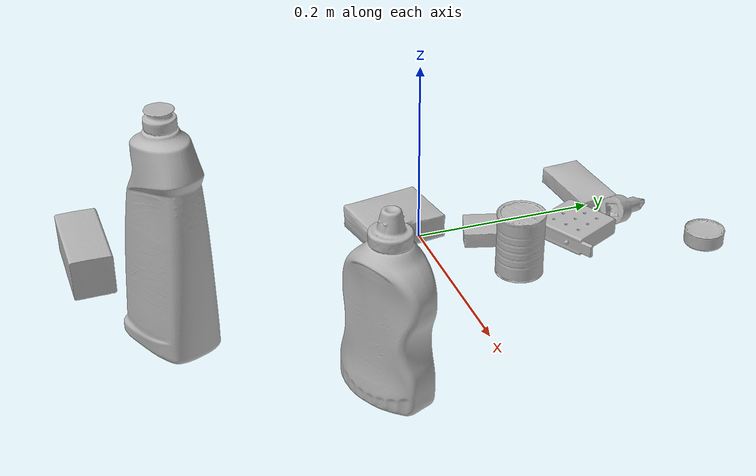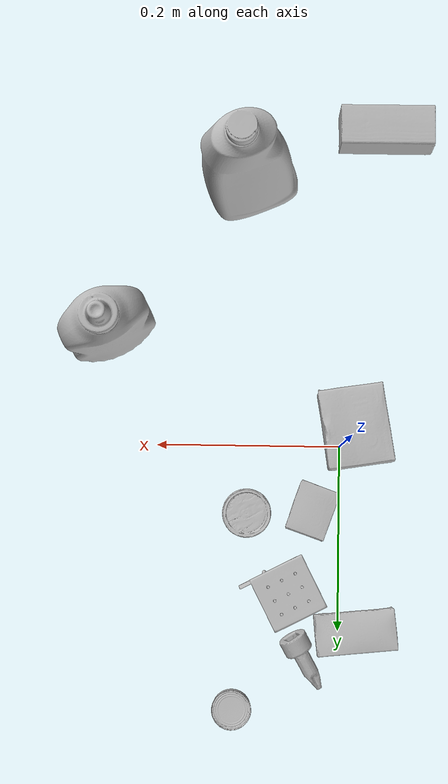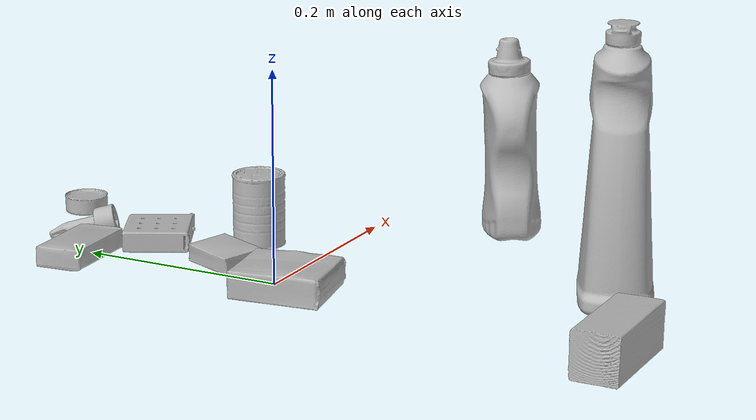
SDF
<sdf version="1.4">
  <world name="default">
    <light name="light1" type="point">
      <pose>0 0 1 0 0 0</pose>
      <diffuse>3 3 3 1</diffuse>
      <specular>3 3 3 1</specular>
    </light>
    <light name="light2" type="point">
      <pose>0 0.5 2 0 0 0</pose>
      <diffuse>1 1 1 1</diffuse>
      <specular>1 1 1 1</specular>
    </light>
    <light name="light3" type="point">
      <pose>0 0.5 2 0 0 0</pose>
      <diffuse>3 3 3 1</diffuse>
      <specular>3 3 3 1</specular>
    </light>
    <scene>
      <ambient>0.7 0.7 0.7</ambient>
    </scene>
    <model name="bottle1">
      <link name="link_bottle1">
        <collision name="default">
          <geometry>
            <mesh>
              <uri>model://mustard_bottle/collision_meshes/collision.obj</uri>
              <scale>1.0 1.0 1.0</scale>
            </mesh>
          </geometry>
          <surface>
            <friction>
              <ode>
                <mu>0.5</mu>
                <mu2>0.5</mu2>
              </ode>
            </friction>
          <contact>
        <ode>
            <max_vel>0</max_vel>
            <min_depth>0.0001</min_depth>
            <kp>1e8</kp>
        </ode>
    </contact></surface>
        </collision>
        <visual name="default">
          <geometry>
            <mesh>
              <uri>model://mustard_bottle/visual_meshes/visual.dae</uri>
              <scale>1.0 1.0 1.0</scale>
            </mesh>
          </geometry>
        </visual>
        <inertial>
          <mass>0.9814921021461487</mass>
          <pose>0.000503245391882956 -0.00015647400869056582 -0.0174757968634367 0.00041823298570721707 0.000946579165099878 0.024853733541460008</pose>
          <inertia>
            <ixx>0.0027254699</ixx>
            <iyy>0.0023913688</iyy>
            <izz>0.0007182988</izz>
            <ixy>0</ixy>
            <ixz>0</ixz>
            <iyz>0</iyz>
          </inertia>
        </inertial>
      </link>
      <pose>0.25037434697151184 -0.12205035239458084 0.09678112715482712 -0.0006034122238133107 0.03232418349580083 2.0096684747108147</pose>
    </model>
    <model name="bottle2">
      <link name="link_bottle2">
        <collision name="default">
          <geometry>
            <mesh>
              <uri>model://bleach_cleanser/collision_meshes/collision.obj</uri>
              <scale>1.0 1.0 1.0</scale>
            </mesh>
          </geometry>
          <surface>
            <friction>
              <ode>
                <mu>0.5</mu>
                <mu2>0.5</mu2>
              </ode>
            </friction>
          <contact>
        <ode>
            <max_vel>0</max_vel>
            <min_depth>0.0001</min_depth>
            <kp>1e8</kp>
        </ode>
    </contact></surface>
        </collision>
        <visual name="default">
          <geometry>
            <mesh>
              <uri>model://bleach_cleanser/visual_meshes/visual.dae</uri>
              <scale>1.0 1.0 1.0</scale>
            </mesh>
          </geometry>
        </visual>
        <inertial>
          <mass>0.5613878965377808</mass>
          <pose>0.00012193182919872925 0.0037838828284293413 -0.02442161738872528 -0.07381670616369514 0.00042011545192634117 -0.006875071107578698</pose>
          <inertia>
            <ixx>0.0027323565</ixx>
            <iyy>0.002546156</iyy>
            <izz>0.0004671619</izz>
            <ixy>0</ixy>
            <ixz>0</ixz>
            <iyz>0</iyz>
          </inertia>
        </inertial>
      </link>
      <pose>0.10096479952335358 -0.2902838885784149 0.12578420341014862 -0.00020523464929457578 1.037894427689835e-05 -1.1629088659280142</pose>
    </model>
    <model name="toy1">
      <link name="link_toy1">
        <collision name="default">
          <geometry>
            <mesh>
              <uri>model://nine_hole_peg_test/collision_meshes/collision.obj</uri>
              <scale>0.5 0.5 0.5</scale>
            </mesh>
          </geometry>
          <surface>
            <friction>
              <ode>
                <mu>0.5</mu>
                <mu2>0.5</mu2>
              </ode>
            </friction>
          <contact>
        <ode>
            <max_vel>0</max_vel>
            <min_depth>0.0001</min_depth>
            <kp>1e8</kp>
        </ode>
    </contact></surface>
        </collision>
        <visual name="default">
          <geometry>
            <mesh>
              <uri>model://nine_hole_peg_test/visual_meshes/visual.dae</uri>
              <scale>0.5 0.5 0.5</scale>
            </mesh>
          </geometry>
        </visual>
        <inertial>
          <mass>0.10001979023218155</mass>
          <pose>-0.002308693015947938 -0.0048238071613013744 1.323034393863054e-05 -0.001466679064329537 0.000719417562538249 -0.6342417933325166</pose>
          <inertia>
            <ixx>3.9099352e-05</ixx>
            <iyy>3.650665e-05</iyy>
            <izz>6.851359e-05</izz>
            <ixy>0</ixy>
            <ixz>0</ixz>
            <iyz>0</iyz>
          </inertia>
        </inertial>
      </link>
      <pose>0.060291994363069534 0.15991495549678802 0.010385501198470592 9.182694601130137e-10 1.1911023527171519e-08 -1.0951113115029452</pose>
    </model>
    <model name="toy2">
      <link name="link_toy2">
        <collision name="default">
          <geometry>
            <mesh>
              <uri>model://d_toy_airplane/collision_meshes/collision.obj</uri>
              <scale>1.0 1.0 1.0</scale>
            </mesh>
          </geometry>
          <surface>
            <friction>
              <ode>
                <mu>0.5</mu>
                <mu2>0.5</mu2>
              </ode>
            </friction>
          <contact>
        <ode>
            <max_vel>0</max_vel>
            <min_depth>0.0001</min_depth>
            <kp>1e8</kp>
        </ode>
    </contact></surface>
        </collision>
        <visual name="default">
          <geometry>
            <mesh>
              <uri>model://d_toy_airplane/visual_meshes/visual.dae</uri>
              <scale>1.0 1.0 1.0</scale>
            </mesh>
          </geometry>
        </visual>
        <inertial>
          <mass>0.019254321232438087</mass>
          <pose>9.410314669366926e-05 -5.809308640891686e-05 -0.011728096753358841 0.0002669110283705203 0.00467899073598619 0.5194519611142697</pose>
          <inertia>
            <ixx>5.7720713e-06</ixx>
            <iyy>5.776424e-06</iyy>
            <izz>1.7426261e-06</izz>
            <ixy>0</ixy>
            <ixz>0</ixz>
            <iyz>0</iyz>
          </inertia>
        </inertial>
      </link>
      <pose>0.034861817955970764 0.233719602227211 0.011313841678202152 1.807819135346176 0.14095376579194768 -2.608033680563734</pose>
    </model>
    <model name="can1">
      <link name="link_can1">
        <collision name="default">
          <geometry>
            <mesh>
              <uri>model://master_chef_can/collision_meshes/collision.obj</uri>
              <scale>0.5 0.5 0.5</scale>
            </mesh>
          </geometry>
          <surface>
            <friction>
              <ode>
                <mu>0.5</mu>
                <mu2>0.5</mu2>
              </ode>
            </friction>
          <contact>
        <ode>
            <max_vel>0</max_vel>
            <min_depth>0.0001</min_depth>
            <kp>1e8</kp>
        </ode>
    </contact></surface>
        </collision>
        <visual name="default">
          <geometry>
            <mesh>
              <uri>model://master_chef_can/visual_meshes/visual.dae</uri>
              <scale>0.5 0.5 0.5</scale>
            </mesh>
          </geometry>
        </visual>
        <inertial>
          <mass>0.11909646540880203</mass>
          <pose>-4.661963976104744e-05 1.3926845099376806e-07 -5.07990553160198e-05 -0.0017995128948922 0.0006479239957886283 -0.6102624789319168</pose>
          <inertia>
            <ixx>6.990155e-05</ixx>
            <iyy>6.938709e-05</iyy>
            <izz>3.8625953e-05</izz>
            <ixy>0</ixy>
            <ixz>0</ixz>
            <iyz>0</iyz>
          </inertia>
        </inertial>
      </link>
      <pose>0.10044976323843002 0.07433953881263733 0.035301998257637024 -1.462949690631582e-06 -1.1061709064980492e-06 0.9633543254978224</pose>
    </model>
    <model name="can2">
      <link name="link_can2">
        <collision name="default">
          <geometry>
            <mesh>
              <uri>model://tuna_fish_can/collision_meshes/collision.obj</uri>
              <scale>0.5 0.5 0.5</scale>
            </mesh>
          </geometry>
          <surface>
            <friction>
              <ode>
                <mu>0.5</mu>
                <mu2>0.5</mu2>
              </ode>
            </friction>
          <contact>
        <ode>
            <max_vel>0</max_vel>
            <min_depth>0.0001</min_depth>
            <kp>1e8</kp>
        </ode>
    </contact></surface>
        </collision>
        <visual name="default">
          <geometry>
            <mesh>
              <uri>model://tuna_fish_can/visual_meshes/visual.dae</uri>
              <scale>0.5 0.5 0.5</scale>
            </mesh>
          </geometry>
        </visual>
        <inertial>
          <mass>0.019333453848958015</mass>
          <pose>-2.0361452698125504e-05 -7.256490789586678e-06 -0.0005269024986773729 -0.0017944786606280685 0.0001716327651594619 0.24054823336333434</pose>
          <inertia>
            <ixx>2.6139116e-06</ixx>
            <iyy>2.6030175e-06</iyy>
            <izz>4.4727767e-06</izz>
            <ixy>0</ixy>
            <ixz>0</ixz>
            <iyz>0</iyz>
          </inertia>
        </inertial>
      </link>
      <pose>0.11420543491840363 0.2845708727836609 0.008519998751580715 -4.946476407542751e-09 1.6846148455930027e-08 -0.6305718471142443</pose>
    </model>
    <model name="box1">
      <link name="link_box1">
        <collision name="default">
          <geometry>
            <mesh>
              <uri>model://sugar_box/collision_meshes/collision.obj</uri>
              <scale>0.5 0.5 0.5</scale>
            </mesh>
          </geometry>
          <surface>
            <friction>
              <ode>
                <mu>0.5</mu>
                <mu2>0.5</mu2>
              </ode>
            </friction>
          <contact>
        <ode>
            <max_vel>0</max_vel>
            <min_depth>0.0001</min_depth>
            <kp>1e8</kp>
        </ode>
    </contact></surface>
        </collision>
        <visual name="default">
          <geometry>
            <mesh>
              <uri>model://sugar_box/visual_meshes/visual.dae</uri>
              <scale>0.5 0.5 0.5</scale>
            </mesh>
          </geometry>
        </visual>
        <inertial>
          <mass>0.11277332901954651</mass>
          <pose>0.0005171863595023751 1.924554817378521e-05 -0.0001818240125430748 -0.00040462603870476286 0.0010506635217257978 0.002615378323397263</pose>
          <inertia>
            <ixx>2.34906e-05</ixx>
            <iyy>7.592646e-05</iyy>
            <izz>9.089305e-05</izz>
            <ixy>0</ixy>
            <ixz>0</ixz>
            <iyz>0</iyz>
          </inertia>
        </inertial>
      </link>
      <pose>-0.018576573580503464 0.2003992199897766 0.011399301700294018 0.0007745594009735433 -0.02343302973697689 -3.0421992285816684</pose>
    </model>
    <model name="box2">
      <link name="link_box2">
        <collision name="default">
          <geometry>
            <mesh>
              <uri>model://gelatin_box/collision_meshes/collision.obj</uri>
              <scale>1.0 1.0 1.0</scale>
            </mesh>
          </geometry>
          <surface>
            <friction>
              <ode>
                <mu>0.5</mu>
                <mu2>0.5</mu2>
              </ode>
            </friction>
          <contact>
        <ode>
            <max_vel>0</max_vel>
            <min_depth>0.0001</min_depth>
            <kp>1e8</kp>
        </ode>
    </contact></surface>
        </collision>
        <visual name="default">
          <geometry>
            <mesh>
              <uri>model://gelatin_box/visual_meshes/visual.dae</uri>
              <scale>1.0 1.0 1.0</scale>
            </mesh>
          </geometry>
        </visual>
        <inertial>
          <mass>0.18825438618659973</mass>
          <pose>0.0004319618456065655 0.00011156871914863586 -0.0003640321083366871 -0.0010503720853528096 -0.004755817758068365 0.016440559471334753</pose>
          <inertia>
            <ixx>0.00013289225</ixx>
            <iyy>9.492423e-05</iyy>
            <izz>0.0002022916</izz>
            <ixy>0</ixy>
            <ixz>0</ixz>
            <iyz>0</iyz>
          </inertia>
        </inertial>
      </link>
      <pose>-0.017081964761018753 -0.022343771532177925 0.015168314799666405 0.005597484672779598 -0.007304552152703867 0.14908901274425143</pose>
    </model>
    <model name="box3">
      <link name="link_box3">
        <collision name="default">
          <geometry>
            <mesh>
              <uri>model://wood_block/collision_meshes/collision.obj</uri>
              <scale>0.5 0.5 0.5</scale>
            </mesh>
          </geometry>
          <surface>
            <friction>
              <ode>
                <mu>0.5</mu>
                <mu2>0.5</mu2>
              </ode>
            </friction>
          <contact>
        <ode>
            <max_vel>0</max_vel>
            <min_depth>0.0001</min_depth>
            <kp>1e8</kp>
        </ode>
    </contact></surface>
        </collision>
        <visual name="default">
          <geometry>
            <mesh>
              <uri>model://wood_block/visual_meshes/visual.dae</uri>
              <scale>0.5 0.5 0.5</scale>
            </mesh>
          </geometry>
        </visual>
        <inertial>
          <mass>0.16905224323272705</mass>
          <pose>-2.906657982748584e-06 -0.00028540476341731846 0.00013204291462898254 -0.05220975529285028 -0.0051926941753174345 -0.0068613788950967446</pose>
          <inertia>
            <ixx>5.655437e-05</ixx>
            <iyy>0.00017865526</iyy>
            <izz>0.00017798702</izz>
            <ixy>0</ixy>
            <ixz>0</ixz>
            <iyz>0</iyz>
          </inertia>
        </inertial>
      </link>
      <pose>-0.04817572236061096 -0.35049527883529663 0.022629262879490852 -0.00520848533211898 0.00571869554088139 -3.1360645436590575</pose>
    </model>
    <model name="box4">
      <link name="link_box4">
        <collision name="default">
          <geometry>
            <mesh>
              <uri>model://pudding_box/collision_meshes/collision.obj</uri>
              <scale>0.5 0.5 0.5</scale>
            </mesh>
          </geometry>
          <surface>
            <friction>
              <ode>
                <mu>0.5</mu>
                <mu2>0.5</mu2>
              </ode>
            </friction>
          <contact>
        <ode>
            <max_vel>0</max_vel>
            <min_depth>0.0001</min_depth>
            <kp>1e8</kp>
        </ode>
    </contact></surface>
        </collision>
        <visual name="default">
          <geometry>
            <mesh>
              <uri>model://pudding_box/visual_meshes/visual.dae</uri>
              <scale>0.5 0.5 0.5</scale>
            </mesh>
          </geometry>
        </visual>
        <inertial>
          <mass>0.04372405260801315</mass>
          <pose>0.00024474109522998333 0.00040339428232982755 -0.00025944135268218815 0.005213099923843092 -0.006603798704775496 0.02007982702870814</pose>
          <inertia>
            <ixx>1.2356946e-05</ixx>
            <iyy>8.313842e-06</iyy>
            <izz>1.8248264e-05</izz>
            <ixy>0</ixy>
            <ixz>0</ixz>
            <iyz>0</iyz>
          </inertia>
        </inertial>
      </link>
      <pose>0.02911781333386898 0.06991729885339737 0.009862903505563736 0.022348471929822353 -0.01139167746978411 -0.340396229202587</pose>
    </model>
  <physics type="ode">
      <max_contacts>50</max_contacts>
      <ode>
        <solver>
          <type>quick</type>
          <iters>75</iters>
        </solver>
        <constraints>
          <contact_max_correcting_vel>0</contact_max_correcting_vel>
          <contact_surface_layer>0</contact_surface_layer>
        </constraints>
      </ode>
    </physics></world>
</sdf>
